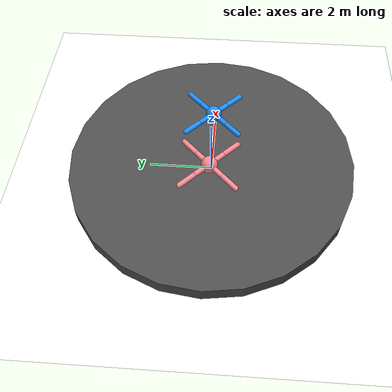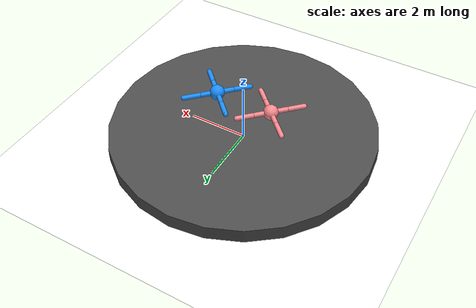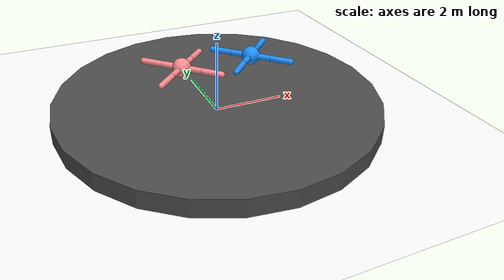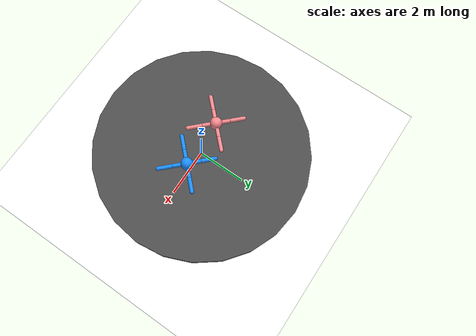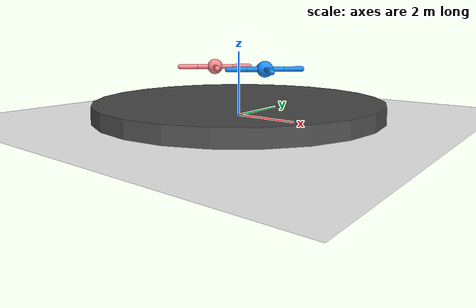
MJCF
<mujoco model="mutiagent_world">
  <compiler angle="degree" coordinate="local" inertiafromgeom="true" />
  <option integrator="RK4" timestep="0.003" solver="PGS" iterations="1000" />
  <default>
    <joint armature="1" damping="1" limited="true" />
  <default class="agent0"><joint armature="1" damping="1" limited="true" />
    <geom conaffinity="0" condim="3" density="5.0" friction="1 0.5 0.5" margin="0.01" rgba="0.98 0.54 0.56 1" material="geom" contype="1" />
  </default><default class="agent1"><joint armature="1" damping="1" limited="true" />
    <geom conaffinity="1" condim="3" density="5.0" friction="1 0.5 0.5" margin="0.01" rgba="0.11 0.56 1 1" material="geom" contype="0" />
  </default></default>
  <visual>
    <headlight ambient=".1 .1 .1" diffuse=".6 .6 .6" specular="0.3 0.3 0.3" />
    <map znear=".01" />
    <quality shadowsize="16384" />
  </visual>
  <asset>
    <texture builtin="gradient" height="100" rgb1="1 1 1" rgb2="0 0 0" type="skybox" width="100" />
    <texture builtin="flat" height="1278" mark="cross" markrgb="0 0 0" name="texgeom" random="0.01" rgb1="0.8 0.6 0.4" rgb2="0.8 0.6 0.4" type="cube" width="127" />
    <texture builtin="checker" height="100" name="texplane" rgb1="0.5 0.5 0.5" rgb2="0.5 0.5 0.5" type="2d" width="100" markrgb="0.2 0.2 0.2" mark="edge" />
    <texture name="MatPlane" type="2d" builtin="checker" rgb1=".5 .5 .5" rgb2=".5 .5 .5" width="300" height="300" mark="edge" markrgb="0.1 0.1 0.1" />
    <material name="MatPlane" texture="MatPlane" texrepeat="2 2" texuniform="true" reflectance=".2" />
    <material name="geom" texture="texgeom" texuniform="true" />
  </asset>
  <worldbody>
    <light cutoff="100" diffuse="1 1 1" dir="-0 0 -1.3" directional="true" exponent="1" pos="0 0 1.3" specular=".1 .1 .1" />
    <geom contype="1" conaffinity="1" friction="1 .1 .1" condim="3" material="MatPlane" name="floor" pos="0 0 0" rgba="1 1 1 1" size="20 20 0.125" type="plane" />
    <geom fromto="4 -5 0  4 +5 0" name="rightgoal" rgba="0.6 0.0 0.0 0" size=".03" type="cylinder" />
    <geom fromto="-4 -5 0  -4 +5 0" name="leftgoal" rgba="0.6 0.0 0.0 0" size=".03" type="cylinder" />
    <geom conaffinity="1" condim="3" contype="1" friction="1 .1 .1" name="arena" size="4.5 .25" type="cylinder" pos="0 0 0.25" rgba="0.3 0.3 0.3 1" />
  <body name="agent0/0" pos="-1 0 1.5" euler="0 0 0">
    <geom pos="0 0 0" size="0.25" type="sphere" class="agent0" name="agent0/anon3875557634" />
    <joint armature="0" damping="0" limited="false" margin="0.01" name="agent0/0_joint" pos="0 0 0" range="-30 30" type="free" />
    <body name="agent0/1" pos="0 0 0">
      <geom fromto="0 0 0 0.4 0.4 0" size="0.08" type="capsule" class="agent0" name="agent0/anon4721373160" />
      <joint axis="0 0 1" name="agent0/1_joint" pos="0 0 0" range="-30 30" type="hinge" />
      <body name="agent0/11" pos="0.4 0.4 0">
        <geom fromto="0 0 0 0.4 0.4 0" size="0.08" type="capsule" class="agent0" name="agent0/anon8460265530" />
        <joint axis="-0.707107 0.707107 0" name="agent0/11_joint" pos="0 0 0" range="30 70" type="hinge" />
      </body>
    </body>
    <body name="agent0/2" pos="0 0 0">
      <geom fromto="0 0 0 -0.4 0.4 0" size="0.08" type="capsule" class="agent0" name="agent0/anon5691034509" />
      <joint axis="0 0 1" name="agent0/2_joint" pos="0 0 0" range="-30 30" type="hinge" />
      <body name="agent0/12" pos="-0.4 0.4 0">
        <geom fromto="0 0 0 -0.4 0.4 0" size="0.08" type="capsule" class="agent0" name="agent0/anon4460003243" />
        <joint axis="-0.707107 -0.707107 0" name="agent0/12_joint" pos="0 0 0" range="30 70" type="hinge" />
      </body>
    </body>
    <body name="agent0/3" pos="0 0 0">
      <geom fromto="0 0 0 -0.4 -0.4 0" size="0.08" type="capsule" class="agent0" name="agent0/anon2724186316" />
      <joint axis="0 0 1" name="agent0/3_joint" pos="0 0 0" range="-30 30" type="hinge" />
      <body name="agent0/13" pos="-0.4 -0.4 0">
        <geom fromto="0 0 0 -0.4 -0.4 0" size="0.08" type="capsule" class="agent0" name="agent0/anon4118655751" />
        <joint axis="0.707107 -0.707107 0" name="agent0/13_joint" pos="0 0 0" range="30 70" type="hinge" />
      </body>
    </body>
    <body name="agent0/4" pos="0 0 0">
      <geom fromto="0 0 0 0.4 -0.4 0" size="0.08" type="capsule" class="agent0" name="agent0/anon2803713072" />
      <joint axis="0 0 1" name="agent0/4_joint" pos="0 0 0" range="-30 30" type="hinge" />
      <body name="agent0/14" pos="0.4 -0.4 0">
        <geom fromto="0 0 0 0.4 -0.4 0" size="0.08" type="capsule" class="agent0" name="agent0/anon2499028149" />
        <joint axis="0.707107 0.707107 0" name="agent0/14_joint" pos="0 0 0" range="30 70" type="hinge" />
      </body>
    </body>
  </body>

  <body name="agent1/0" pos="1 0 1.5" euler="0 0 180">
    <geom pos="0 0 0" size="0.25" type="sphere" class="agent1" name="agent1/anon1779699535" />
    <joint armature="0" damping="0" limited="false" margin="0.01" name="agent1/0_joint" pos="0 0 0" range="-30 30" type="free" />
    <body name="agent1/1" pos="0 0 0">
      <geom fromto="0 0 0 0.4 0.4 0" size="0.08" type="capsule" class="agent1" name="agent1/anon7193006454" />
      <joint axis="0 0 1" name="agent1/1_joint" pos="0 0 0" range="-30 30" type="hinge" />
      <body name="agent1/11" pos="0.4 0.4 0">
        <geom fromto="0 0 0 0.4 0.4 0" size="0.08" type="capsule" class="agent1" name="agent1/anon5657338417" />
        <joint axis="-0.707107 0.707107 0" name="agent1/11_joint" pos="0 0 0" range="30 70" type="hinge" />
      </body>
    </body>
    <body name="agent1/2" pos="0 0 0">
      <geom fromto="0 0 0 -0.4 0.4 0" size="0.08" type="capsule" class="agent1" name="agent1/anon7637935686" />
      <joint axis="0 0 1" name="agent1/2_joint" pos="0 0 0" range="-30 30" type="hinge" />
      <body name="agent1/12" pos="-0.4 0.4 0">
        <geom fromto="0 0 0 -0.4 0.4 0" size="0.08" type="capsule" class="agent1" name="agent1/anon8373343908" />
        <joint axis="-0.707107 -0.707107 0" name="agent1/12_joint" pos="0 0 0" range="30 70" type="hinge" />
      </body>
    </body>
    <body name="agent1/3" pos="0 0 0">
      <geom fromto="0 0 0 -0.4 -0.4 0" size="0.08" type="capsule" class="agent1" name="agent1/anon2845531232" />
      <joint axis="0 0 1" name="agent1/3_joint" pos="0 0 0" range="-30 30" type="hinge" />
      <body name="agent1/13" pos="-0.4 -0.4 0">
        <geom fromto="0 0 0 -0.4 -0.4 0" size="0.08" type="capsule" class="agent1" name="agent1/anon4353257055" />
        <joint axis="0.707107 -0.707107 0" name="agent1/13_joint" pos="0 0 0" range="30 70" type="hinge" />
      </body>
    </body>
    <body name="agent1/4" pos="0 0 0">
      <geom fromto="0 0 0 0.4 -0.4 0" size="0.08" type="capsule" class="agent1" name="agent1/anon2675103602" />
      <joint axis="0 0 1" name="agent1/4_joint" pos="0 0 0" range="-30 30" type="hinge" />
      <body name="agent1/14" pos="0.4 -0.4 0">
        <geom fromto="0 0 0 0.4 -0.4 0" size="0.08" type="capsule" class="agent1" name="agent1/anon8066779524" />
        <joint axis="0.707107 0.707107 0" name="agent1/14_joint" pos="0 0 0" range="30 70" type="hinge" />
      </body>
    </body>
  </body>

  </worldbody>
<actuator>
    <motor ctrllimited="true" ctrlrange="-1.0 1.0" joint="agent0/1_joint" gear="150" name="agent0/1_joint" class="agent0" />
    <motor ctrllimited="true" ctrlrange="-1.0 1.0" joint="agent0/2_joint" gear="150" name="agent0/2_joint" class="agent0" />
    <motor ctrllimited="true" ctrlrange="-1.0 1.0" joint="agent0/3_joint" gear="150" name="agent0/3_joint" class="agent0" />
    <motor ctrllimited="true" ctrlrange="-1.0 1.0" joint="agent0/4_joint" gear="150" name="agent0/4_joint" class="agent0" />
    <motor ctrllimited="true" ctrlrange="-1.0 1.0" joint="agent0/11_joint" gear="150" name="agent0/11_joint" class="agent0" />
    <motor ctrllimited="true" ctrlrange="-1.0 1.0" joint="agent0/12_joint" gear="150" name="agent0/12_joint" class="agent0" />
    <motor ctrllimited="true" ctrlrange="-1.0 1.0" joint="agent0/13_joint" gear="150" name="agent0/13_joint" class="agent0" />
    <motor ctrllimited="true" ctrlrange="-1.0 1.0" joint="agent0/14_joint" gear="150" name="agent0/14_joint" class="agent0" />
  <motor ctrllimited="true" ctrlrange="-1.0 1.0" joint="agent1/1_joint" gear="150" name="agent1/1_joint" class="agent1" />
    <motor ctrllimited="true" ctrlrange="-1.0 1.0" joint="agent1/2_joint" gear="150" name="agent1/2_joint" class="agent1" />
    <motor ctrllimited="true" ctrlrange="-1.0 1.0" joint="agent1/3_joint" gear="150" name="agent1/3_joint" class="agent1" />
    <motor ctrllimited="true" ctrlrange="-1.0 1.0" joint="agent1/4_joint" gear="150" name="agent1/4_joint" class="agent1" />
    <motor ctrllimited="true" ctrlrange="-1.0 1.0" joint="agent1/11_joint" gear="150" name="agent1/11_joint" class="agent1" />
    <motor ctrllimited="true" ctrlrange="-1.0 1.0" joint="agent1/12_joint" gear="150" name="agent1/12_joint" class="agent1" />
    <motor ctrllimited="true" ctrlrange="-1.0 1.0" joint="agent1/13_joint" gear="150" name="agent1/13_joint" class="agent1" />
    <motor ctrllimited="true" ctrlrange="-1.0 1.0" joint="agent1/14_joint" gear="150" name="agent1/14_joint" class="agent1" />
  </actuator>
  </mujoco>
